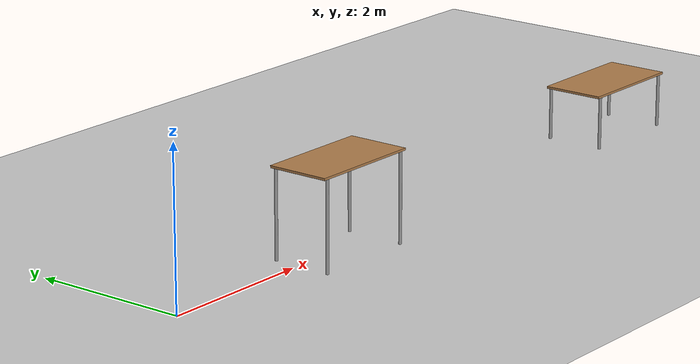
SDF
<sdf version="1.6">
 <world name="default">
  <light name="sun" type="directional">
   <pose>0 0 10 0 -0 0</pose>
   <diffuse>0.8 0.8 0.8 1</diffuse>
   <specular>0.2 0.2 0.2 1</specular>
   <attenuation>
    <range>1000</range>
    <constant>0.9</constant>
    <linear>0.01</linear>
    <quadratic>0.001</quadratic>
   </attenuation>
   <direction>-0.5 0.1 -0.9</direction>
  </light>
  <model name="ground_plane">
   <static>1</static>
   <link name="link">
    <collision name="collision">
     <geometry><plane><normal>0 0 1</normal><size>100 100</size></plane></geometry>
     <surface>
      <contact><collide_bitmask>65535</collide_bitmask></contact>
      <friction><ode><mu>100</mu><mu2>50</mu2></ode></friction>
     </surface>
    </collision>
    <visual name="visual">
     <cast_shadows>0</cast_shadows>
     <geometry><plane><normal>0 0 1</normal><size>100 100</size></plane></geometry>
     <material>
      <script><uri>file://media/materials/scripts/gazebo.material</uri><name>Gazebo/Grey</name></script>
     </material>
    </visual>
   </link>
  </model>
  <gravity>0 0 -9.8</gravity>
  <magnetic_field>6e-06 2.3e-05 -4.2e-05</magnetic_field>
  <atmosphere type="adiabatic"/>
  <physics name="default_physics" default="0" type="ode">
   <max_step_size>0.001</max_step_size>
   <real_time_factor>1</real_time_factor>
   <real_time_update_rate>1000</real_time_update_rate>
  </physics>
  <scene><ambient>0.4 0.4 0.4 1</ambient><background>0.7 0.7 0.7 1</background><shadows>1</shadows></scene>
  <spherical_coordinates>
   <surface_model>EARTH_WGS84</surface_model>
   <latitude_deg>0</latitude_deg>
   <longitude_deg>0</longitude_deg>
   <elevation>0</elevation>
   <heading_deg>0</heading_deg>
  </spherical_coordinates>
  <model name="Long_Table">
   <model name="table">
    <static>1</static>
    <link name="link">
     <collision name="surface">
      <pose>0 0 1.15 0 -0 0</pose>
      <geometry><box><size>1.5 0.8 0.03</size></box></geometry>
      <surface><friction><ode><mu>0.6</mu><mu2>0.6</mu2></ode></friction></surface>
     </collision>
     <visual name="visual1">
      <pose>0 0 1.15 0 -0 0</pose>
      <geometry><box><size>1.5 0.8 0.03</size></box></geometry>
      <material>
       <script><uri>file://media/materials/scripts/gazebo.material</uri><name>Gazebo/Wood</name></script>
      </material>
     </visual>
     <collision name="front_left_leg">
      <pose>0.68 0.38 0.5 0 -0 0</pose>
      <geometry><cylinder><radius>0.02</radius><length>1.3</length></cylinder></geometry>
     </collision>
     <visual name="front_left_leg">
      <pose>0.68 0.38 0.5 0 -0 0</pose>
      <geometry><cylinder><radius>0.02</radius><length>1.3</length></cylinder></geometry>
      <material>
       <script><uri>file://media/materials/scripts/gazebo.material</uri><name>Gazebo/Grey</name></script>
      </material>
     </visual>
     <collision name="front_right_leg">
      <pose>0.68 -0.38 0.5 0 -0 0</pose>
      <geometry><cylinder><radius>0.02</radius><length>1.3</length></cylinder></geometry>
     </collision>
     <visual name="front_right_leg">
      <pose>0.68 -0.38 0.5 0 -0 0</pose>
      <geometry><cylinder><radius>0.02</radius><length>1.3</length></cylinder></geometry>
      <material>
       <script><uri>file://media/materials/scripts/gazebo.material</uri><name>Gazebo/Grey</name></script>
      </material>
     </visual>
     <collision name="back_right_leg">
      <pose>-0.68 -0.38 0.5 0 -0 0</pose>
      <geometry><cylinder><radius>0.02</radius><length>1.3</length></cylinder></geometry>
     </collision>
     <visual name="back_right_leg">
      <pose>-0.68 -0.38 0.5 0 -0 0</pose>
      <geometry><cylinder><radius>0.02</radius><length>1.3</length></cylinder></geometry>
      <material>
       <script><uri>file://media/materials/scripts/gazebo.material</uri><name>Gazebo/Grey</name></script>
      </material>
     </visual>
     <collision name="back_left_leg">
      <pose>-0.68 0.38 0.5 0 -0 0</pose>
      <geometry><cylinder><radius>0.02</radius><length>1.3</length></cylinder></geometry>
     </collision>
     <visual name="back_left_leg">
      <pose>-0.68 0.38 0.5 0 -0 0</pose>
      <geometry><cylinder><radius>0.02</radius><length>1.3</length></cylinder></geometry>
      <material>
       <script><uri>file://media/materials/scripts/gazebo.material</uri><name>Gazebo/Grey</name></script>
      </material>
     </visual>
    </link>
   </model>
   <static>0</static>
   <pose>2.79005 -0.043776 0 0 -0 0</pose>
  </model>
  <model name="Short_Table">
   <model name="table">
    <static>1</static>
    <link name="link">
     <collision name="surface">
      <pose>0 0 0.85 0 -0 0</pose>
      <geometry><box><size>1.5 0.8 0.03</size></box></geometry>
      <surface><friction><ode><mu>0.6</mu><mu2>0.6</mu2></ode></friction></surface>
     </collision>
     <visual name="visual1">
      <pose>0 0 0.85 0 -0 0</pose>
      <geometry><box><size>1.5 0.8 0.03</size></box></geometry>
      <material>
       <script><uri>file://media/materials/scripts/gazebo.material</uri><name>Gazebo/Wood</name></script>
      </material>
     </visual>
     <collision name="front_left_leg">
      <pose>0.68 0.38 0.5 0 -0 0</pose>
      <geometry><cylinder><radius>0.02</radius><length>0.7</length></cylinder></geometry>
     </collision>
     <visual name="front_left_leg">
      <pose>0.68 0.38 0.5 0 -0 0</pose>
      <geometry><cylinder><radius>0.02</radius><length>0.7</length></cylinder></geometry>
      <material>
       <script><uri>file://media/materials/scripts/gazebo.material</uri><name>Gazebo/Grey</name></script>
      </material>
     </visual>
     <collision name="front_right_leg">
      <pose>0.68 -0.38 0.5 0 -0 0</pose>
      <geometry><cylinder><radius>0.02</radius><length>0.7</length></cylinder></geometry>
     </collision>
     <visual name="front_right_leg">
      <pose>0.68 -0.38 0.5 0 -0 0</pose>
      <geometry><cylinder><radius>0.02</radius><length>0.7</length></cylinder></geometry>
      <material>
       <script><uri>file://media/materials/scripts/gazebo.material</uri><name>Gazebo/Grey</name></script>
      </material>
     </visual>
     <collision name="back_right_leg">
      <pose>-0.68 -0.38 0.5 0 -0 0</pose>
      <geometry><cylinder><radius>0.02</radius><length>0.7</length></cylinder></geometry>
     </collision>
     <visual name="back_right_leg">
      <pose>-0.68 -0.38 0.5 0 -0 0</pose>
      <geometry><cylinder><radius>0.02</radius><length>0.7</length></cylinder></geometry>
      <material>
       <script><uri>file://media/materials/scripts/gazebo.material</uri><name>Gazebo/Grey</name></script>
      </material>
     </visual>
     <collision name="back_left_leg">
      <pose>-0.68 0.38 0.5 0 -0 0</pose>
      <geometry><cylinder><radius>0.02</radius><length>0.7</length></cylinder></geometry>
     </collision>
     <visual name="back_left_leg">
      <pose>-0.68 0.38 0.5 0 -0 0</pose>
      <geometry><cylinder><radius>0.02</radius><length>0.7</length></cylinder></geometry>
      <material>
       <script><uri>file://media/materials/scripts/gazebo.material</uri><name>Gazebo/Grey</name></script>
      </material>
     </visual>
    </link>
    <pose>0 -3e-06 0 0 -0 0</pose>
   </model>
   <static>0</static>
   <pose>8.34761 -0.039316 0 0 -0 0</pose>
  </model>
 </world>
</sdf>
